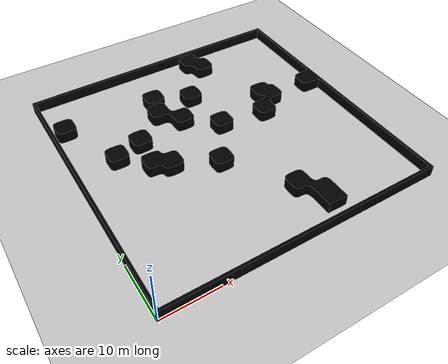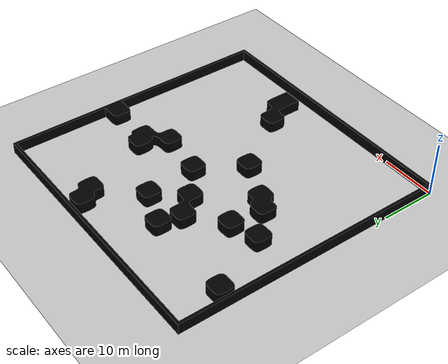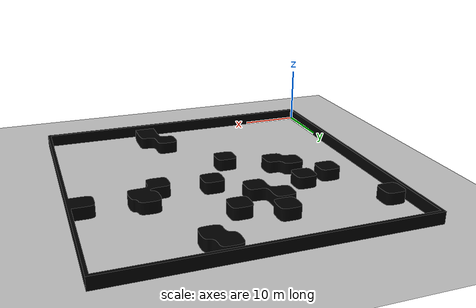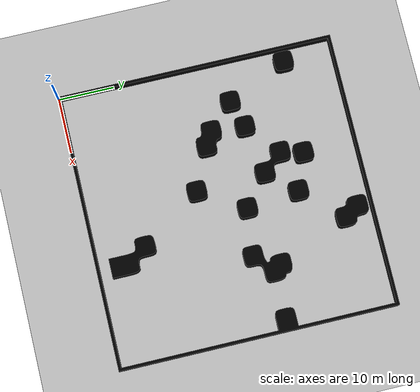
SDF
<?xml version='1.0' encoding='UTF-8'?>
<sdf version="1.4">
  <world name="default">
    <include>
      <uri>model://ground_plane</uri>
    </include>
    <include>
      <uri>model://sun</uri>
    </include>
    <scene>
      <ambient>0.0 0.0 0.0 1.0</ambient>
      <shadows>0</shadows>
    </scene>
    <model name="my_mesh">
      <static>true</static>
      <link name="body">
        <visual name="visual">
          <pose frame="">0.0 0.0 1 0 0 0</pose>
          <geometry>
            <mesh>
              <uri>//map.dae</uri>
            </mesh>
          </geometry>
        </visual>
        <collision name="collision1">
          <pose frame="">0.0 0.0 1 0 0 0</pose>
          <geometry>
            <mesh>
              <uri>//map.dae</uri>
            </mesh>
          </geometry>
        </collision>
      </link>
    </model>
    <plugin name="ActorPosesPlugin" filename="libActorPosesPlugin.so"/>
  </world>
</sdf>
